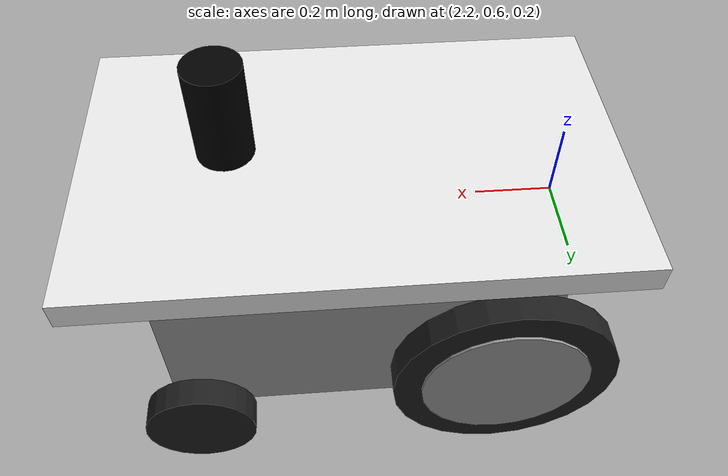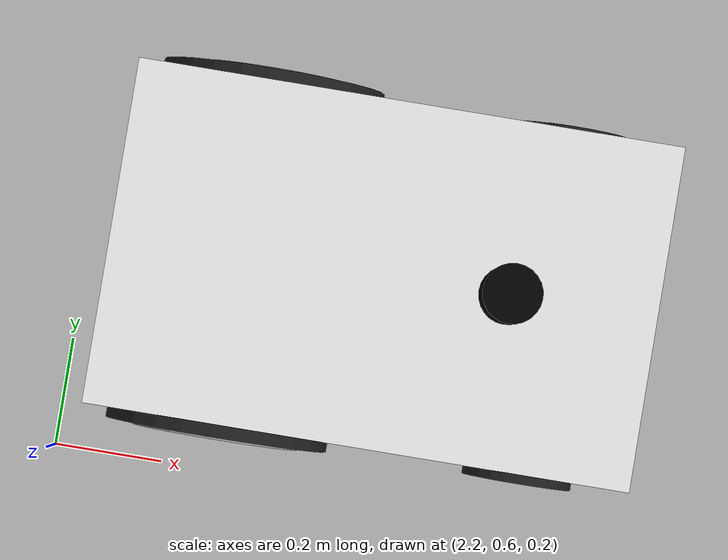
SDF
<sdf version="1.7">
 <world name="world_demo">
  <physics name="1ms" type="ignored">
   <max_step_size>0.01</max_step_size>
   <real_time_factor>1</real_time_factor>
  </physics>
  <plugin name="ignition::gazebo::systems::Physics" filename="libignition-gazebo-physics-system.so"/>
  <plugin name="ignition::gazebo::systems::UserCommands" filename="libignition-gazebo-user-commands-system.so"/>
  <plugin name="ignition::gazebo::systems::SceneBroadcaster" filename="libignition-gazebo-scene-broadcaster-system.so"/>
  <plugin name="ignition::gazebo::systems::Imu" filename="ignition-gazebo-imu-system"/>
  <plugin name="ignition::gazebo::systems::Sensors" filename="ignition-gazebo-sensors-system">
   <render_engine>ogre2</render_engine>
  </plugin>
  <scene>
   <ambient>1 1 1 1</ambient>
   <background>0.3 0.7 0.9 1</background>
   <shadows>0</shadows>
   <grid>1</grid>
  </scene>
  <model name="ground_plane">
   <static>1</static>
   <link name="link">
    <collision name="collision">
     <geometry><plane><normal>0 0 1</normal><size>1 1</size></plane></geometry>
    </collision>
   </link>
  </model>
  <model name="depot_collision">
   <static>1</static>
   <pose>7.19009 1.09982 0 0 0 0</pose>
   <link name="collision_link">
    <collision name="wall1">
     <pose>0 -7.6129 4.5 0 0 0</pose>
     <geometry><box><size>30.167 0.08 9</size></box></geometry>
    </collision>
    <collision name="wall2">
     <pose>0 7.2875 4.5 0 0 0</pose>
     <geometry><box><size>30.167 0.08 9</size></box></geometry>
    </collision>
    <collision name="wall3">
     <pose>-15 0 4.5 0 0 0</pose>
     <geometry><box><size>0.08 15.360 9</size></box></geometry>
    </collision>
    <collision name="wall4">
     <pose>15 0 4.5 0 0 0</pose>
     <geometry><box><size>0.08 15.360 9</size></box></geometry>
    </collision>
    <collision name="boxes1">
     <pose>0.22268 -4.7268 0.68506 0 0 0</pose>
     <geometry><box><size>1.288 1.422 1.288</size></box></geometry>
    </collision>
    <collision name="boxes2">
     <pose>3.1727 -4.7268 0.68506 0 0 0</pose>
     <geometry><box><size>1.288 1.422 1.288</size></box></geometry>
    </collision>
    <collision name="boxes3">
     <pose>5.95268 -4.7268 0.68506 0 0 0</pose>
     <geometry><box><size>1.288 1.422 1.288</size></box></geometry>
    </collision>
    <collision name="boxes4">
     <pose>8.55887 -4.7268 0.68506 0 0 0</pose>
     <geometry><box><size>1.288 1.422 1.288</size></box></geometry>
    </collision>
    <collision name="boxes5">
     <pose>11.326 -4.7268 0.68506 0 0 0</pose>
     <geometry><box><size>1.288 1.422 1.288</size></box></geometry>
    </collision>
    <collision name="boxes6">
     <pose>0.22268 -2.37448 0.68506 0 0 0</pose>
     <geometry><box><size>1.288 1.422 1.288</size></box></geometry>
    </collision>
    <collision name="boxes7">
     <pose>3.1727 -2.37448 0.68506 0 0 0</pose>
     <geometry><box><size>1.288 1.422 1.288</size></box></geometry>
    </collision>
    <collision name="boxes8">
     <pose>5.95268 -2.37448 0.68506 0 0 0</pose>
     <geometry><box><size>1.288 1.422 1.288</size></box></geometry>
    </collision>
    <collision name="boxes9">
     <pose>8.55887 -2.37448 0.68506 0 0 0</pose>
     <geometry><box><size>1.288 1.422 1.288</size></box></geometry>
    </collision>
    <collision name="boxes10">
     <pose>11.326 -2.37448 0.68506 0 0 0</pose>
     <geometry><box><size>1.288 1.422 1.288</size></box></geometry>
    </collision>
    <collision name="boxes11">
     <pose>-1.2268 4.1557 0.68506 0 0 -1.02799893</pose>
     <geometry><box><size>1.288 1.422 1.288</size></box></geometry>
    </collision>
    <collision name="pilar1">
     <pose>-7.5402 3.6151 1 0 0 0</pose>
     <geometry><box><size>0.465 0.465 2</size></box></geometry>
    </collision>
    <collision name="pilar2">
     <pose>7.4575 3.6151 1 0 0 0</pose>
     <geometry><box><size>0.465 0.465 2</size></box></geometry>
    </collision>
    <collision name="pilar3">
     <pose>-7.5402 -3.8857 1 0 0 0</pose>
     <geometry><box><size>0.465 0.465 2</size></box></geometry>
    </collision>
    <collision name="pilar4">
     <pose>7.4575 -3.8857 1 0 0 0</pose>
     <geometry><box><size>0.465 0.465 2</size></box></geometry>
    </collision>
    <collision name="pallet_mover1">
     <pose>-0.6144 -2.389 0.41838 0 0 0</pose>
     <geometry><box><size>0.363 0.440 0.719</size></box></geometry>
    </collision>
    <collision name="pallet_mover2">
     <pose>-1.6004 4.8225 0.41838 0 0 0</pose>
     <geometry><box><size>0.363 0.244 0.719</size></box></geometry>
    </collision>
    <collision name="stairs">
     <pose>13.018 3.1652 0.25 0 0 0</pose>
     <geometry><box><size>1.299 0.6 0.5</size></box></geometry>
    </collision>
    <collision name="shelfs1">
     <pose>1.4662 -0.017559 0.5 0 0 0</pose>
     <geometry><cylinder><radius>0.03</radius><length>1</length></cylinder></geometry>
    </collision>
    <collision name="shelfs2">
     <pose>2.6483 -0.017559 0.5 0 0 0</pose>
     <geometry><cylinder><radius>0.03</radius><length>1</length></cylinder></geometry>
    </collision>
    <collision name="shelfs3">
     <pose>5.3247 -0.017559 0.5 0 0 0</pose>
     <geometry><cylinder><radius>0.03</radius><length>1</length></cylinder></geometry>
    </collision>
    <collision name="shelfs4">
     <pose>6.5063 -0.017559 0.5 0 0 0</pose>
     <geometry><cylinder><radius>0.03</radius><length>1</length></cylinder></geometry>
    </collision>
    <collision name="shelfs5">
     <pose>9.0758 -0.017559 0.5 0 0 0</pose>
     <geometry><cylinder><radius>0.03</radius><length>1</length></cylinder></geometry>
    </collision>
    <collision name="shelfs6">
     <pose>10.258 -0.017559 0.5 0 0 0</pose>
     <geometry><cylinder><radius>0.03</radius><length>1</length></cylinder></geometry>
    </collision>
    <collision name="shelfs7">
     <pose>1.4662 2.5664 0.5 0 0 0</pose>
     <geometry><cylinder><radius>0.03</radius><length>1</length></cylinder></geometry>
    </collision>
    <collision name="shelfs8">
     <pose>2.6483 2.5664 0.5 0 0 0</pose>
     <geometry><cylinder><radius>0.03</radius><length>1</length></cylinder></geometry>
    </collision>
    <collision name="shelfs9">
     <pose>5.3247 2.5664 0.5 0 0 0</pose>
     <geometry><cylinder><radius>0.03</radius><length>1</length></cylinder></geometry>
    </collision>
    <collision name="shelfs10">
     <pose>6.5063 2.5664 0.5 0 0 0</pose>
     <geometry><cylinder><radius>0.03</radius><length>1</length></cylinder></geometry>
    </collision>
    <collision name="shelfs11">
     <pose>9.0758 2.5664 0.5 0 0 0</pose>
     <geometry><cylinder><radius>0.03</radius><length>1</length></cylinder></geometry>
    </collision>
    <collision name="shelfs12">
     <pose>10.258 2.5664 0.5 0 0 0</pose>
     <geometry><cylinder><radius>0.03</radius><length>1</length></cylinder></geometry>
    </collision>
    <collision name="shelfs13">
     <pose>1.4662 5.1497 0.5 0 0 0</pose>
     <geometry><cylinder><radius>0.03</radius><length>1</length></cylinder></geometry>
    </collision>
    <collision name="shelfs14">
     <pose>2.6483 5.1497 0.5 0 0 0</pose>
     <geometry><cylinder><radius>0.03</radius><length>1</length></cylinder></geometry>
    </collision>
    <collision name="shelfs15">
     <pose>5.3247 5.1497 0.5 0 0 0</pose>
     <geometry><cylinder><radius>0.03</radius><length>1</length></cylinder></geometry>
    </collision>
    <collision name="shelfs16">
     <pose>6.5063 5.1497 0.5 0 0 0</pose>
     <geometry><cylinder><radius>0.03</radius><length>1</length></cylinder></geometry>
    </collision>
    <collision name="shelfs17">
     <pose>9.0758 5.1497 0.5 0 0 0</pose>
     <geometry><cylinder><radius>0.03</radius><length>1</length></cylinder></geometry>
    </collision>
    <collision name="shelfs18">
     <pose>10.258 5.1497 0.5 0 0 0</pose>
     <geometry><cylinder><radius>0.03</radius><length>1</length></cylinder></geometry>
    </collision>
   </link>
  </model>
  <include>
   <uri>file:///home/porizou/mobile_mover_ws/src/ros2MobileMoverSimulation/mm_gazebo/urdf/mm.sdf</uri>
   <name>mobile_mover</name>
   <pose>2.75268 1.0014 0.132279 0 0 0</pose>
  </include>
 </world>
</sdf>

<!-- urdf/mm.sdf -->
<sdf version='1.9'>
  <model name='mm'>
    <link name='robot_footprint'>
      <inertial>
        <pose>0.00061100862541756 0 0.4757246846487511 0 0 0</pose>
        <mass>40.113999999999997</mass>
        <inertia>
          <ixx>0.83339178341726061</ixx>
          <ixy>0</ixy>
          <ixz>-0.0062322879792591108</ixz>
          <iyy>0.83864645759585166</iyy>
          <iyz>0</iyz>
          <izz>0.206254674178591</izz>
        </inertia>
      </inertial>
      <collision name='robot_footprint_fixed_joint_lump__collision_collision'>
        <pose>0 0 0.6 0 0 0</pose>
        <geometry>
          <box>
            <size>0.95 0.6 0.05</size>
          </box>
        </geometry>
      </collision>
      <collision name='robot_footprint_fixed_joint_lump__collision_collision_1'>
        <pose>0 0 0.4 0 0 0</pose>
        <geometry>
          <box>
            <size>0.7 0.5 0.35</size>
          </box>
        </geometry>
      </collision>
      <collision name='robot_footprint_fixed_joint_lump__lidar_link_collision_2'>
        <pose>0.215 0 0.73 0 0 0</pose>
        <geometry>
          <cylinder>
            <length>0.17999999999999999</length>
            <radius>0.050799999999999998</radius>
          </cylinder>
        </geometry>
        <surface>
          <contact>
            <ode/>
          </contact>
          <friction>
            <ode/>
          </friction>
        </surface>
      </collision>
      <visual name='robot_footprint_fixed_joint_lump__chassis_visual_visual'>
        <pose>0 0 0.6 0 0 0</pose>
        <geometry>
          <box>
            <size>0.95 0.6 0.05</size>
          </box>
        </geometry>
        <material>
          <script>
            <name>Gazebo/White</name>
            <uri>file://media/materials/scripts/gazebo.material</uri>
          </script>
        </material>
      </visual>
      <visual name='robot_footprint_fixed_joint_lump__box_visual_visual_1'>
        <pose>0 0 0.4 0 0 0</pose>
        <geometry>
          <box>
            <size>0.7 0.5 0.35</size>
          </box>
        </geometry>
        <material>
          <script>
            <name>Gazebo/Grey</name>
            <uri>file://media/materials/scripts/gazebo.material</uri>
          </script>
        </material>
      </visual>
      <visual name='robot_footprint_fixed_joint_lump__lidar_link_visual_2'>
        <pose>0.215 0 0.73 0 0 0</pose>
        <geometry>
          <cylinder>
            <length>0.17999999999999999</length>
            <radius>0.050799999999999998</radius>
          </cylinder>
        </geometry>
        <material>
          <diffuse>0 0 0 1</diffuse>
          <ambient>0 0 0 1</ambient>
        </material>
      </visual>

      <gravity>true</gravity>

    </link>
    <joint name='back_left_wheel_joint' type='revolute'>
      <pose relative_to='robot_footprint'>-0.25 0.3 0.35 0 0 0</pose>
      <parent>robot_footprint</parent>
      <child>back_left_wheel</child>
      <axis>
        <xyz>0 1 0</xyz>
        <limit>
          <lower>-10000000000000000</lower>
          <upper>10000000000000000</upper>
        </limit>
        <dynamics>
          <damping>1</damping>
          <friction>1</friction>
          <spring_reference>0</spring_reference>
          <spring_stiffness>0</spring_stiffness>
        </dynamics>
      </axis>
    </joint>
    <link name='back_left_wheel'>
      <pose relative_to='back_left_wheel_joint'>0 0 0 0 0 0</pose>
      <inertial>
        <pose>0 0 0 -5.762794389312105e-13 1.570700000002009 1.570699999999184</pose>
        <mass>0.5</mass>
        <inertia>
          <ixx>0.10000000000000001</ixx>
          <ixy>0</ixy>
          <ixz>0</ixz>
          <iyy>0.10000000000000001</iyy>
          <iyz>0</iyz>
          <izz>0.10000000000000001</izz>
        </inertia>
      </inertial>
      <collision name='back_left_wheel_collision'>
        <pose>0 0 0 0 1.570796326794897 1.5707</pose>
        <geometry>
          <cylinder>
            <length>0.050000000000000003</length>
            <radius>0.20000000000000001</radius>
          </cylinder>
        </geometry>
        <surface>
          <contact>
            <ode/>
          </contact>
          <friction>
            <ode/>
          </friction>
        </surface>
      </collision>
      <visual name='back_left_wheel_visual_visual'>
        <pose>0 0 0 0 1.570796326794897 1.5707</pose>
        <geometry>
          <cylinder>
            <length>0.050000000000000003</length>
            <radius>0.20000000000000001</radius>
          </cylinder>
        </geometry>
        <material>
          <script>
            <name>Gazebo/Black</name>
            <uri>file://media/materials/scripts/gazebo.material</uri>
          </script>
        </material>
      </visual>
    </link>
    <joint name='back_left_wheel_cover_joint' type='revolute'>
      <pose relative_to='back_left_wheel'>0 0.025 0 0 0 0</pose>
      <parent>back_left_wheel</parent>
      <child>back_left_wheel_cover</child>
      <axis>
        <xyz>0 1 0</xyz>
        <limit>
          <lower>-10000000000000000</lower>
          <upper>10000000000000000</upper>
        </limit>
        <dynamics>
          <spring_reference>0</spring_reference>
          <spring_stiffness>0</spring_stiffness>
        </dynamics>
      </axis>
    </joint>
    <link name='back_left_wheel_cover'>
      <pose relative_to='back_left_wheel_cover_joint'>0 0 0 0 0 0</pose>
      <inertial>
        <pose>0 0 0 -5.762794389312105e-13 1.570700000002009 1.570699999999184</pose>
        <mass>0.01</mass>
        <inertia>
          <ixx>0.10000000000000001</ixx>
          <ixy>0</ixy>
          <ixz>0</ixz>
          <iyy>0.10000000000000001</iyy>
          <iyz>0</iyz>
          <izz>0.10000000000000001</izz>
        </inertia>
      </inertial>
      <collision name='back_left_wheel_cover_collision'>
        <pose>0 0 0 0 1.570796326794897 1.5707</pose>
        <geometry>
          <cylinder>
            <length>0.01</length>
            <radius>0.14999999999999999</radius>
          </cylinder>
        </geometry>
        <surface>
          <contact>
            <ode/>
          </contact>
          <friction>
            <ode/>
          </friction>
        </surface>
      </collision>
      <visual name='back_left_wheel_cover_visual_visual'>
        <pose>0 0 0 0 1.570796326794897 1.5707</pose>
        <geometry>
          <cylinder>
            <length>0.01</length>
            <radius>0.14999999999999999</radius>
          </cylinder>
        </geometry>
        <material>
          <script>
            <name>Gazebo/Grey</name>
            <uri>file://media/materials/scripts/gazebo.material</uri>
          </script>
        </material>
      </visual>
    </link>
    <joint name='back_right_wheel_joint' type='revolute'>
      <pose relative_to='robot_footprint'>-0.25 -0.3 0.35 0 0 0</pose>
      <parent>robot_footprint</parent>
      <child>back_right_wheel</child>
      <axis>
        <xyz>0 1 0</xyz>
        <limit>
          <lower>-10000000000000000</lower>
          <upper>10000000000000000</upper>
        </limit>
        <dynamics>
          <damping>1</damping>
          <friction>1</friction>
          <spring_reference>0</spring_reference>
          <spring_stiffness>0</spring_stiffness>
        </dynamics>
      </axis>
    </joint>
    <link name='back_right_wheel'>
      <pose relative_to='back_right_wheel_joint'>0 0 0 0 0 0</pose>
      <inertial>
        <pose>0 0 0 -5.762794389312105e-13 1.570700000002009 1.570699999999184</pose>
        <mass>0.5</mass>
        <inertia>
          <ixx>0.10000000000000001</ixx>
          <ixy>0</ixy>
          <ixz>0</ixz>
          <iyy>0.10000000000000001</iyy>
          <iyz>0</iyz>
          <izz>0.10000000000000001</izz>
        </inertia>
      </inertial>
      <collision name='back_right_wheel_collision'>
        <pose>0 0 0 0 1.570796326794897 1.5707</pose>
        <geometry>
          <cylinder>
            <length>0.050000000000000003</length>
            <radius>0.20000000000000001</radius>
          </cylinder>
        </geometry>
        <surface>
          <contact>
            <ode/>
          </contact>
          <friction>
            <ode/>
          </friction>
        </surface>
      </collision>
      <visual name='back_right_wheel_visual_visual'>
        <pose>0 0 0 0 1.570796326794897 1.5707</pose>
        <geometry>
          <cylinder>
            <length>0.050000000000000003</length>
            <radius>0.20000000000000001</radius>
          </cylinder>
        </geometry>
        <material>
          <script>
            <name>Gazebo/Black</name>
            <uri>file://media/materials/scripts/gazebo.material</uri>
          </script>
        </material>
      </visual>
    </link>
    <joint name='back_right_wheel_cover_joint' type='revolute'>
      <pose relative_to='back_right_wheel'>0 -0.025 0 0 0 0</pose>
      <parent>back_right_wheel</parent>
      <child>back_right_wheel_cover</child>
      <axis>
        <xyz>0 1 0</xyz>
        <limit>
          <lower>-10000000000000000</lower>
          <upper>10000000000000000</upper>
        </limit>
        <dynamics>
          <damping>1</damping>
          <friction>1</friction>
          <spring_reference>0</spring_reference>
          <spring_stiffness>0</spring_stiffness>
        </dynamics>
      </axis>
    </joint>
    <link name='back_right_wheel_cover'>
      <pose relative_to='back_right_wheel_cover_joint'>0 0 0 0 0 0</pose>
      <inertial>
        <pose>0 0 0 -5.762794389312105e-13 1.570700000002009 1.570699999999184</pose>
        <mass>0.01</mass>
        <inertia>
          <ixx>0.10000000000000001</ixx>
          <ixy>0</ixy>
          <ixz>0</ixz>
          <iyy>0.10000000000000001</iyy>
          <iyz>0</iyz>
          <izz>0.10000000000000001</izz>
        </inertia>
      </inertial>
      <collision name='back_right_wheel_cover_collision'>
        <pose>0 0 0 0 1.570796326794897 1.5707</pose>
        <geometry>
          <cylinder>
            <length>0.01</length>
            <radius>0.14999999999999999</radius>
          </cylinder>
        </geometry>
        <surface>
          <contact>
            <ode/>
          </contact>
          <friction>
            <ode/>
          </friction>
        </surface>
      </collision>
      <visual name='back_right_wheel_cover_visual_visual'>
        <pose>0 0 0 0 1.570796326794897 1.5707</pose>
        <geometry>
          <cylinder>
            <length>0.01</length>
            <radius>0.14999999999999999</radius>
          </cylinder>
        </geometry>
        <material>
          <script>
            <name>Gazebo/Grey</name>
            <uri>file://media/materials/scripts/gazebo.material</uri>
          </script>
        </material>
      </visual>
    </link>
    <joint name='front_left_wheel_joint' type='revolute'>
      <pose relative_to='robot_footprint'>0.3 0.3 0.25 0 0 0</pose>
      <parent>robot_footprint</parent>
      <child>front_left_wheel</child>
      <axis>
        <xyz>0 1 0</xyz>
        <limit>
          <lower>-10000000000000000</lower>
          <upper>10000000000000000</upper>
        </limit>
        <dynamics>
          <damping>1</damping>
          <friction>1</friction>
          <spring_reference>0</spring_reference>
          <spring_stiffness>0</spring_stiffness>
        </dynamics>
      </axis>
    </joint>
    <link name='front_left_wheel'>
      <pose relative_to='front_left_wheel_joint'>0 0 0 0 0 0</pose>
      <inertial>
        <pose>0 0 0 -5.762794389312105e-13 1.570700000002009 1.570699999999184</pose>
        <mass>5</mass>
        <inertia>
          <ixx>0.10000000000000001</ixx>
          <ixy>0</ixy>
          <ixz>0</ixz>
          <iyy>0.10000000000000001</iyy>
          <iyz>0</iyz>
          <izz>0.10000000000000001</izz>
        </inertia>
      </inertial>
      <collision name='front_left_wheel_collision'>
        <pose>0 0 0 0 1.570796326794897 1.5707</pose>
        <geometry>
          <cylinder>
            <length>0.050000000000000003</length>
            <radius>0.10000000000000001</radius>
          </cylinder>
        </geometry>
        <surface>
          <contact>
            <ode/>
          </contact>
          <friction>
            <ode/>
          </friction>
        </surface>
      </collision>
      <visual name='front_left_wheel_visual_visual'>
        <pose>0 0 0 0 1.570796326794897 1.5707</pose>
        <geometry>
          <cylinder>
            <length>0.050000000000000003</length>
            <radius>0.10000000000000001</radius>
          </cylinder>
        </geometry>
        <material>
          <script>
            <name>Gazebo/Black</name>
            <uri>file://media/materials/scripts/gazebo.material</uri>
          </script>
        </material>
      </visual>
    </link>
    <joint name='front_right_wheel_joint' type='revolute'>
      <pose relative_to='robot_footprint'>0.3 -0.3 0.25 0 0 0</pose>
      <parent>robot_footprint</parent>
      <child>front_right_wheel</child>
      <axis>
        <xyz>0 1 0</xyz>
        <limit>
          <lower>-10000000000000000</lower>
          <upper>10000000000000000</upper>
        </limit>
        <dynamics>
          <damping>1</damping>
          <friction>1</friction>
          <spring_reference>0</spring_reference>
          <spring_stiffness>0</spring_stiffness>
        </dynamics>
      </axis>
    </joint>
    <link name='front_right_wheel'>
      <pose relative_to='front_right_wheel_joint'>0 0 0 0 0 0</pose>
      <inertial>
        <pose>0 0 0 -5.762794389312105e-13 1.570700000002009 1.570699999999184</pose>
        <mass>5</mass>
        <inertia>
          <ixx>0.10000000000000001</ixx>
          <ixy>0</ixy>
          <ixz>0</ixz>
          <iyy>0.10000000000000001</iyy>
          <iyz>0</iyz>
          <izz>0.10000000000000001</izz>
        </inertia>
      </inertial>
      <collision name='front_right_wheel_collision'>
        <pose>0 0 0 0 1.570796326794897 1.5707</pose>
        <geometry>
          <cylinder>
            <length>0.050000000000000003</length>
            <radius>0.10000000000000001</radius>
          </cylinder>
        </geometry>
        <surface>
          <contact>
            <ode/>
          </contact>
          <friction>
            <ode/>
          </friction>
        </surface>
      </collision>
      <visual name='front_right_wheel_visual_visual'>
        <pose>0 0 0 0 1.570796326794897 1.5707</pose>
        <geometry>
          <cylinder>
            <length>0.050000000000000003</length>
            <radius>0.10000000000000001</radius>
          </cylinder>
        </geometry>
        <material>
          <script>
            <name>Gazebo/Black</name>
            <uri>file://media/materials/scripts/gazebo.material</uri>
          </script>
        </material>
      </visual>
    </link>
    <static>false</static>

    <plugin filename="libignition-gazebo-diff-drive-system.so" name="ignition::gazebo::systems::DiffDrive">
    <left_joint>front_left_wheel_joint</left_joint>
    <right_joint>front_right_wheel_joint</right_joint>
    <wheel_separation>0.108</wheel_separation>
    <wheel_radius>0.012</wheel_radius>
    <odom_publish_frequency>100</odom_publish_frequency>
    <topic>/cmd_vel</topic>
    </plugin>

  </model>
</sdf>
